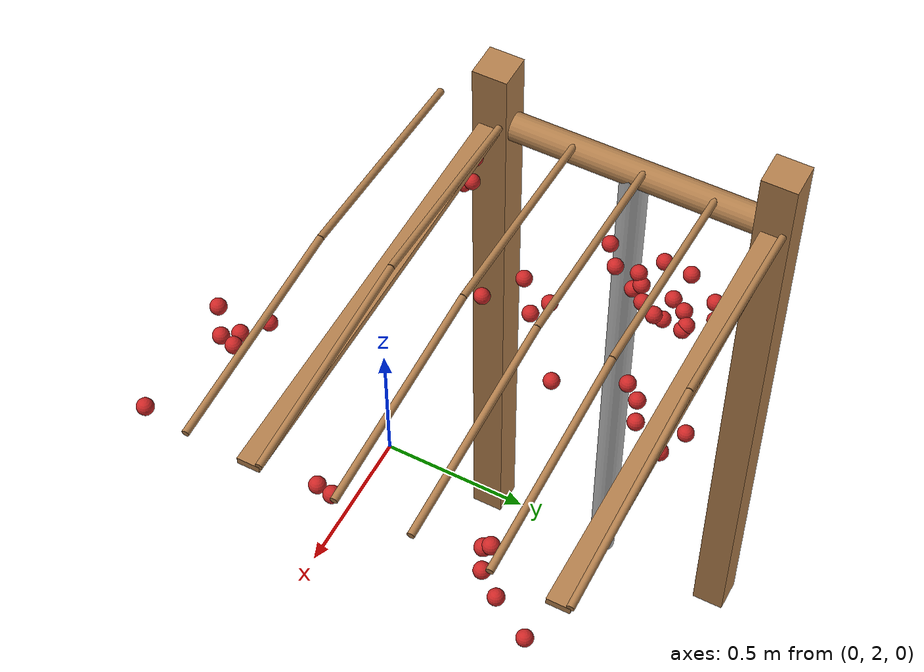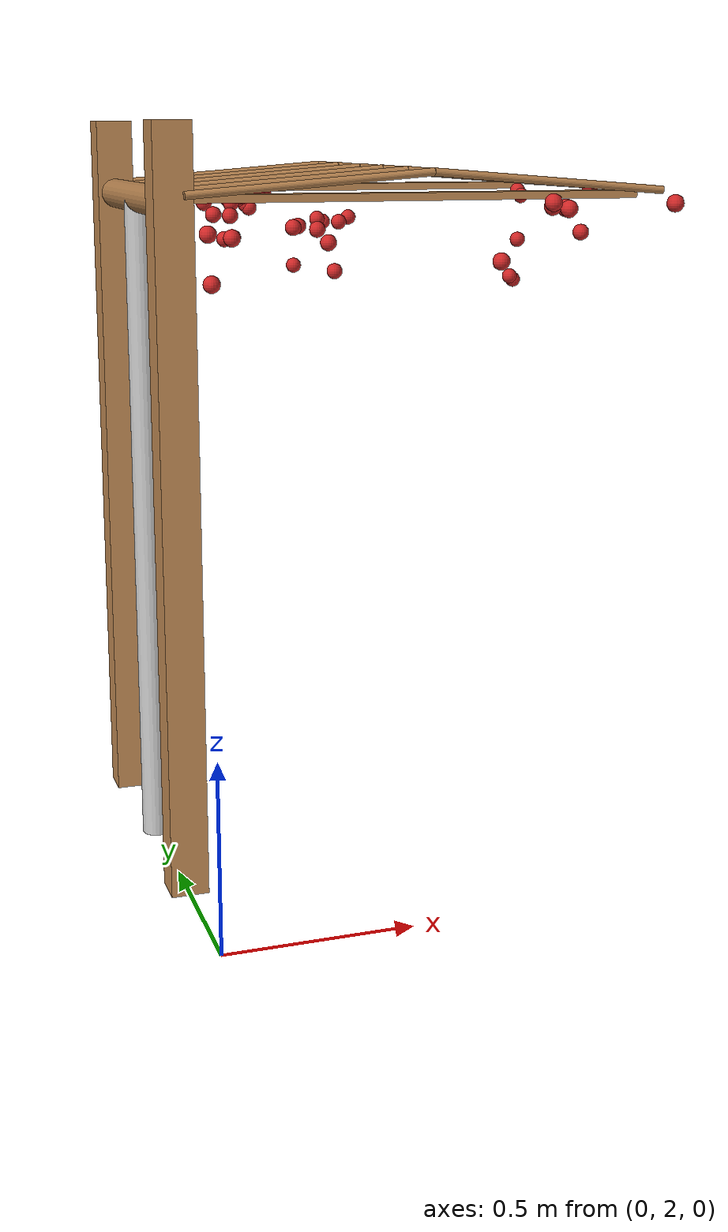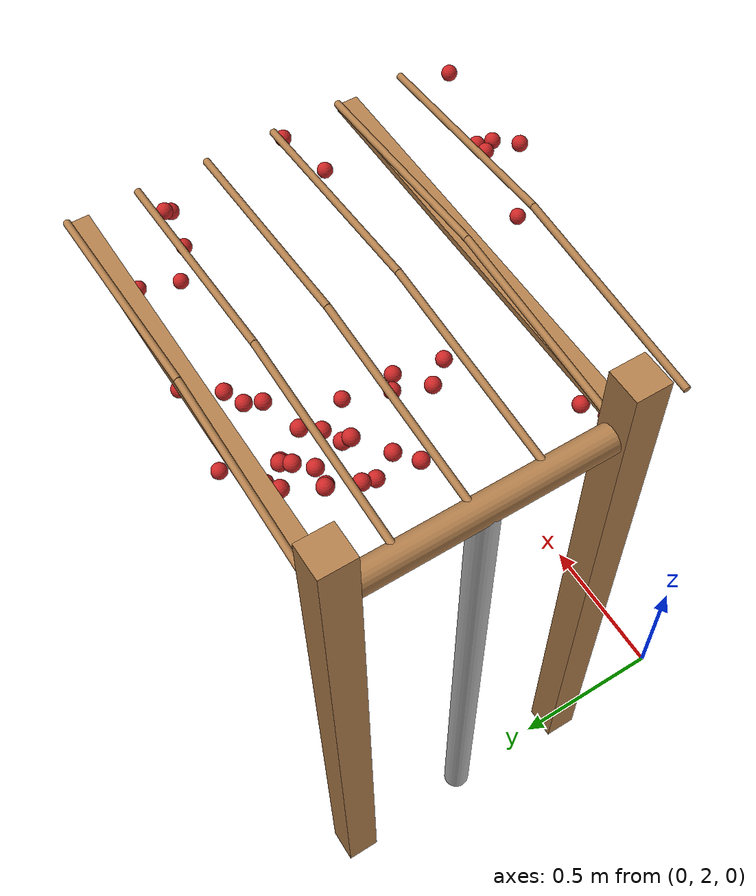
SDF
<sdf version="1.4">
 <model name="pergola">
  <include><name>post_3</name><pose>0.0 2.4000000000000004 0 0 0 0</pose><uri>model://post</uri></include>
  <include><name>post_4</name><pose>0.0 3.2 0 0 0 0</pose><uri>model://post</uri></include>
  <link name="beam_3">
   <pose>0.625 2.4000000000000004 1.81 0 0 0</pose>
   <collision name="collision"><geometry><box><size>1.25 0.06 0.02</size></box></geometry></collision>
   <visual name="visual">
    <geometry><box><size>1.25 0.06 0.02</size></box></geometry>
    <material><script><name>Gazebo/Wood</name></script></material>
   </visual>
   <inertial>
    <mass>5</mass>
    <inertia>
     <ixx>0.0016666666666666668</ixx>
     <ixy>0.0</ixy>
     <ixz>0.0</ixz>
     <iyy>0.6525416666666667</iyy>
     <iyz>0.0</iyz>
     <izz>0.6512083333333333</izz>
    </inertia>
   </inertial>
  </link>
  <link name="beam_4">
   <pose>0.625 3.2 1.81 0 0 0</pose>
   <collision name="collision"><geometry><box><size>1.25 0.06 0.02</size></box></geometry></collision>
   <visual name="visual">
    <geometry><box><size>1.25 0.06 0.02</size></box></geometry>
    <material><script><name>Gazebo/Wood</name></script></material>
   </visual>
   <inertial>
    <mass>5</mass>
    <inertia>
     <ixx>0.0016666666666666668</ixx>
     <ixy>0.0</ixy>
     <ixz>0.0</ixz>
     <iyy>0.6525416666666667</iyy>
     <iyz>0.0</iyz>
     <izz>0.6512083333333333</izz>
    </inertia>
   </inertial>
  </link>
  <include><name>tree_3</name><pose>0.0 2.8000000000000003 0 0 0 0</pose><uri>model://tree_trunk</uri></include>
  <link name="baseBranch_3">
   <pose>0.0 2.8000000000000003 1.8 1.5707963267948966 0 0</pose>
   <collision name="collision">
    <geometry><cylinder><radius>0.04</radius><length>0.74</length></cylinder></geometry>
   </collision>
   <visual name="visual">
    <geometry><cylinder><radius>0.04</radius><length>0.74</length></cylinder></geometry>
    <material><script><name>Gazebo/WoodFloor</name></script></material>
   </visual>
   <inertial>
    <mass>10</mass>
    <inertia>
     <ixx>0.4603333333333333</ixx>
     <ixy>0.0</ixy>
     <ixz>0.0</ixz>
     <iyy>0.4603333333333333</iyy>
     <iyz>0.0</iyz>
     <izz>0.008</izz>
    </inertia>
   </inertial>
  </link>
  <link name="vine_22">
   <pose>0.3125 2.23 1.85 0 1.4909663410826592 0</pose>
   <collision name="collision">
    <geometry><cylinder><radius>0.01</radius><length>0.6269968101992226</length></cylinder></geometry>
   </collision>
   <visual name="visual">
    <geometry><cylinder><radius>0.01</radius><length>0.6269968101992226</length></cylinder></geometry>
    <material><script><name>Gazebo/WoodFloor</name></script></material>
   </visual>
   <inertial>
    <mass>5</mass>
    <inertia>
     <ixx>0.1639270833333333</ixx>
     <ixy>0.0</ixy>
     <ixz>0.0</ixz>
     <iyy>0.1639270833333333</iyy>
     <iyz>0.0</iyz>
     <izz>0.00025</izz>
    </inertia>
   </inertial>
  </link>
  <link name="vine_23">
   <pose>0.9375 2.23 1.85 0 -1.4909663410826592 0</pose>
   <collision name="collision">
    <geometry><cylinder><radius>0.01</radius><length>0.6269968101992226</length></cylinder></geometry>
   </collision>
   <visual name="visual">
    <geometry><cylinder><radius>0.01</radius><length>0.6269968101992226</length></cylinder></geometry>
    <material><script><name>Gazebo/WoodFloor</name></script></material>
   </visual>
   <inertial>
    <mass>5</mass>
    <inertia>
     <ixx>0.1639270833333333</ixx>
     <ixy>0.0</ixy>
     <ixz>0.0</ixz>
     <iyy>0.1639270833333333</iyy>
     <iyz>0.0</iyz>
     <izz>0.00025</izz>
    </inertia>
   </inertial>
  </link>
  <link name="vine_24">
   <pose>0.3125 2.43 1.85 0 1.4909663410826592 0</pose>
   <collision name="collision">
    <geometry><cylinder><radius>0.01</radius><length>0.6269968101992226</length></cylinder></geometry>
   </collision>
   <visual name="visual">
    <geometry><cylinder><radius>0.01</radius><length>0.6269968101992226</length></cylinder></geometry>
    <material><script><name>Gazebo/WoodFloor</name></script></material>
   </visual>
   <inertial>
    <mass>5</mass>
    <inertia>
     <ixx>0.1639270833333333</ixx>
     <ixy>0.0</ixy>
     <ixz>0.0</ixz>
     <iyy>0.1639270833333333</iyy>
     <iyz>0.0</iyz>
     <izz>0.00025</izz>
    </inertia>
   </inertial>
  </link>
  <link name="vine_25">
   <pose>0.9375 2.43 1.85 0 -1.4909663410826592 0</pose>
   <collision name="collision">
    <geometry><cylinder><radius>0.01</radius><length>0.6269968101992226</length></cylinder></geometry>
   </collision>
   <visual name="visual">
    <geometry><cylinder><radius>0.01</radius><length>0.6269968101992226</length></cylinder></geometry>
    <material><script><name>Gazebo/WoodFloor</name></script></material>
   </visual>
   <inertial>
    <mass>5</mass>
    <inertia>
     <ixx>0.1639270833333333</ixx>
     <ixy>0.0</ixy>
     <ixz>0.0</ixz>
     <iyy>0.1639270833333333</iyy>
     <iyz>0.0</iyz>
     <izz>0.00025</izz>
    </inertia>
   </inertial>
  </link>
  <link name="vine_26">
   <pose>0.3125 2.63 1.85 0 1.4909663410826592 0</pose>
   <collision name="collision">
    <geometry><cylinder><radius>0.01</radius><length>0.6269968101992226</length></cylinder></geometry>
   </collision>
   <visual name="visual">
    <geometry><cylinder><radius>0.01</radius><length>0.6269968101992226</length></cylinder></geometry>
    <material><script><name>Gazebo/WoodFloor</name></script></material>
   </visual>
   <inertial>
    <mass>5</mass>
    <inertia>
     <ixx>0.1639270833333333</ixx>
     <ixy>0.0</ixy>
     <ixz>0.0</ixz>
     <iyy>0.1639270833333333</iyy>
     <iyz>0.0</iyz>
     <izz>0.00025</izz>
    </inertia>
   </inertial>
  </link>
  <link name="vine_27">
   <pose>0.9375 2.63 1.85 0 -1.4909663410826592 0</pose>
   <collision name="collision">
    <geometry><cylinder><radius>0.01</radius><length>0.6269968101992226</length></cylinder></geometry>
   </collision>
   <visual name="visual">
    <geometry><cylinder><radius>0.01</radius><length>0.6269968101992226</length></cylinder></geometry>
    <material><script><name>Gazebo/WoodFloor</name></script></material>
   </visual>
   <inertial>
    <mass>5</mass>
    <inertia>
     <ixx>0.1639270833333333</ixx>
     <ixy>0.0</ixy>
     <ixz>0.0</ixz>
     <iyy>0.1639270833333333</iyy>
     <iyz>0.0</iyz>
     <izz>0.00025</izz>
    </inertia>
   </inertial>
  </link>
  <link name="vine_28">
   <pose>0.3125 2.83 1.85 0 1.4909663410826592 0</pose>
   <collision name="collision">
    <geometry><cylinder><radius>0.01</radius><length>0.6269968101992226</length></cylinder></geometry>
   </collision>
   <visual name="visual">
    <geometry><cylinder><radius>0.01</radius><length>0.6269968101992226</length></cylinder></geometry>
    <material><script><name>Gazebo/WoodFloor</name></script></material>
   </visual>
   <inertial>
    <mass>5</mass>
    <inertia>
     <ixx>0.1639270833333333</ixx>
     <ixy>0.0</ixy>
     <ixz>0.0</ixz>
     <iyy>0.1639270833333333</iyy>
     <iyz>0.0</iyz>
     <izz>0.00025</izz>
    </inertia>
   </inertial>
  </link>
  <link name="vine_29">
   <pose>0.9375 2.83 1.85 0 -1.4909663410826592 0</pose>
   <collision name="collision">
    <geometry><cylinder><radius>0.01</radius><length>0.6269968101992226</length></cylinder></geometry>
   </collision>
   <visual name="visual">
    <geometry><cylinder><radius>0.01</radius><length>0.6269968101992226</length></cylinder></geometry>
    <material><script><name>Gazebo/WoodFloor</name></script></material>
   </visual>
   <inertial>
    <mass>5</mass>
    <inertia>
     <ixx>0.1639270833333333</ixx>
     <ixy>0.0</ixy>
     <ixz>0.0</ixz>
     <iyy>0.1639270833333333</iyy>
     <iyz>0.0</iyz>
     <izz>0.00025</izz>
    </inertia>
   </inertial>
  </link>
  <link name="vine_30">
   <pose>0.3125 3.03 1.85 0 1.4909663410826592 0</pose>
   <collision name="collision">
    <geometry><cylinder><radius>0.01</radius><length>0.6269968101992226</length></cylinder></geometry>
   </collision>
   <visual name="visual">
    <geometry><cylinder><radius>0.01</radius><length>0.6269968101992226</length></cylinder></geometry>
    <material><script><name>Gazebo/WoodFloor</name></script></material>
   </visual>
   <inertial>
    <mass>5</mass>
    <inertia>
     <ixx>0.1639270833333333</ixx>
     <ixy>0.0</ixy>
     <ixz>0.0</ixz>
     <iyy>0.1639270833333333</iyy>
     <iyz>0.0</iyz>
     <izz>0.00025</izz>
    </inertia>
   </inertial>
  </link>
  <link name="vine_31">
   <pose>0.9375 3.03 1.85 0 -1.4909663410826592 0</pose>
   <collision name="collision">
    <geometry><cylinder><radius>0.01</radius><length>0.6269968101992226</length></cylinder></geometry>
   </collision>
   <visual name="visual">
    <geometry><cylinder><radius>0.01</radius><length>0.6269968101992226</length></cylinder></geometry>
    <material><script><name>Gazebo/WoodFloor</name></script></material>
   </visual>
   <inertial>
    <mass>5</mass>
    <inertia>
     <ixx>0.1639270833333333</ixx>
     <ixy>0.0</ixy>
     <ixz>0.0</ixz>
     <iyy>0.1639270833333333</iyy>
     <iyz>0.0</iyz>
     <izz>0.00025</izz>
    </inertia>
   </inertial>
  </link>
  <link name="vine_32">
   <pose>0.3125 3.23 1.85 0 1.4909663410826592 0</pose>
   <collision name="collision">
    <geometry><cylinder><radius>0.01</radius><length>0.6269968101992226</length></cylinder></geometry>
   </collision>
   <visual name="visual">
    <geometry><cylinder><radius>0.01</radius><length>0.6269968101992226</length></cylinder></geometry>
    <material><script><name>Gazebo/WoodFloor</name></script></material>
   </visual>
   <inertial>
    <mass>5</mass>
    <inertia>
     <ixx>0.1639270833333333</ixx>
     <ixy>0.0</ixy>
     <ixz>0.0</ixz>
     <iyy>0.1639270833333333</iyy>
     <iyz>0.0</iyz>
     <izz>0.00025</izz>
    </inertia>
   </inertial>
  </link>
  <link name="vine_33">
   <pose>0.9375 3.23 1.85 0 -1.4909663410826592 0</pose>
   <collision name="collision">
    <geometry><cylinder><radius>0.01</radius><length>0.6269968101992226</length></cylinder></geometry>
   </collision>
   <visual name="visual">
    <geometry><cylinder><radius>0.01</radius><length>0.6269968101992226</length></cylinder></geometry>
    <material><script><name>Gazebo/WoodFloor</name></script></material>
   </visual>
   <inertial>
    <mass>5</mass>
    <inertia>
     <ixx>0.1639270833333333</ixx>
     <ixy>0.0</ixy>
     <ixz>0.0</ixz>
     <iyy>0.1639270833333333</iyy>
     <iyz>0.0</iyz>
     <izz>0.00025</izz>
    </inertia>
   </inertial>
  </link>
  <link name="fruit_3">
   <pose>1.1751466543872304 2.9949975951901653 1.800253805234695 0 0 0</pose>
   <collision name="fruit_collision_3"><geometry><sphere><radius>0.022</radius></sphere></geometry></collision>
   <visual name="visual">
    <geometry><sphere><radius>0.022</radius></sphere></geometry>
    <material><script><name>Gazebo/Red</name></script></material>
   </visual>
   <inertial>
    <mass>0.05</mass>
    <inertia>
     <ixx>9.679999999999999e-06</ixx>
     <ixy>0.0</ixy>
     <ixz>0.0</ixz>
     <iyy>9.679999999999999e-06</iyy>
     <iyz>0.0</iyz>
     <izz>9.679999999999999e-06</izz>
    </inertia>
   </inertial>
   <sensor name="fruit_contact_3" type="contact">
    <plugin name="contact_plugin_3" filename="libcontact_plugin.so"/>
    <contact><collision>fruit_collision_3</collision><topic>fruit_contact_topic_3</topic></contact>
   </sensor>
  </link>
  <link name="fruit_6">
   <pose>1.1651200380507636 2.966934088027173 1.6576129850474137 0 0 0</pose>
   <collision name="fruit_collision_6"><geometry><sphere><radius>0.022</radius></sphere></geometry></collision>
   <visual name="visual">
    <geometry><sphere><radius>0.022</radius></sphere></geometry>
    <material><script><name>Gazebo/Red</name></script></material>
   </visual>
   <inertial>
    <mass>0.05</mass>
    <inertia>
     <ixx>9.679999999999999e-06</ixx>
     <ixy>0.0</ixy>
     <ixz>0.0</ixz>
     <iyy>9.679999999999999e-06</iyy>
     <iyz>0.0</iyz>
     <izz>9.679999999999999e-06</izz>
    </inertia>
   </inertial>
   <sensor name="fruit_contact_6" type="contact">
    <plugin name="contact_plugin_6" filename="libcontact_plugin.so"/>
    <contact><collision>fruit_collision_6</collision><topic>fruit_contact_topic_6</topic></contact>
   </sensor>
  </link>
  <link name="fruit_19">
   <pose>0.31298484404060317 2.9571537522348703 1.8155178682897644 0 0 0</pose>
   <collision name="fruit_collision_19"><geometry><sphere><radius>0.022</radius></sphere></geometry></collision>
   <visual name="visual">
    <geometry><sphere><radius>0.022</radius></sphere></geometry>
    <material><script><name>Gazebo/Red</name></script></material>
   </visual>
   <inertial>
    <mass>0.05</mass>
    <inertia>
     <ixx>9.679999999999999e-06</ixx>
     <ixy>0.0</ixy>
     <ixz>0.0</ixz>
     <iyy>9.679999999999999e-06</iyy>
     <iyz>0.0</iyz>
     <izz>9.679999999999999e-06</izz>
    </inertia>
   </inertial>
   <sensor name="fruit_contact_19" type="contact">
    <plugin name="contact_plugin_19" filename="libcontact_plugin.so"/>
    <contact><collision>fruit_collision_19</collision><topic>fruit_contact_topic_19</topic></contact>
   </sensor>
  </link>
  <link name="fruit_44">
   <pose>0.8802203118222492 2.085605411709271 1.8031803338756964 0 0 0</pose>
   <collision name="fruit_collision_44"><geometry><sphere><radius>0.022</radius></sphere></geometry></collision>
   <visual name="visual">
    <geometry><sphere><radius>0.022</radius></sphere></geometry>
    <material><script><name>Gazebo/Red</name></script></material>
   </visual>
   <inertial>
    <mass>0.05</mass>
    <inertia>
     <ixx>9.679999999999999e-06</ixx>
     <ixy>0.0</ixy>
     <ixz>0.0</ixz>
     <iyy>9.679999999999999e-06</iyy>
     <iyz>0.0</iyz>
     <izz>9.679999999999999e-06</izz>
    </inertia>
   </inertial>
   <sensor name="fruit_contact_44" type="contact">
    <plugin name="contact_plugin_44" filename="libcontact_plugin.so"/>
    <contact><collision>fruit_collision_44</collision><topic>fruit_contact_topic_44</topic></contact>
   </sensor>
  </link>
  <link name="fruit_52">
   <pose>0.20882086005662437 2.8324684638857125 1.750229507298991 0 0 0</pose>
   <collision name="fruit_collision_52"><geometry><sphere><radius>0.022</radius></sphere></geometry></collision>
   <visual name="visual">
    <geometry><sphere><radius>0.022</radius></sphere></geometry>
    <material><script><name>Gazebo/Red</name></script></material>
   </visual>
   <inertial>
    <mass>0.05</mass>
    <inertia>
     <ixx>9.679999999999999e-06</ixx>
     <ixy>0.0</ixy>
     <ixz>0.0</ixz>
     <iyy>9.679999999999999e-06</iyy>
     <iyz>0.0</iyz>
     <izz>9.679999999999999e-06</izz>
    </inertia>
   </inertial>
   <sensor name="fruit_contact_52" type="contact">
    <plugin name="contact_plugin_52" filename="libcontact_plugin.so"/>
    <contact><collision>fruit_collision_52</collision><topic>fruit_contact_topic_52</topic></contact>
   </sensor>
  </link>
  <link name="fruit_85">
   <pose>0.7120352980910454 3.205870636272803 1.719150542318895 0 0 0</pose>
   <collision name="fruit_collision_85"><geometry><sphere><radius>0.022</radius></sphere></geometry></collision>
   <visual name="visual">
    <geometry><sphere><radius>0.022</radius></sphere></geometry>
    <material><script><name>Gazebo/Red</name></script></material>
   </visual>
   <inertial>
    <mass>0.05</mass>
    <inertia>
     <ixx>9.679999999999999e-06</ixx>
     <ixy>0.0</ixy>
     <ixz>0.0</ixz>
     <iyy>9.679999999999999e-06</iyy>
     <iyz>0.0</iyz>
     <izz>9.679999999999999e-06</izz>
    </inertia>
   </inertial>
   <sensor name="fruit_contact_85" type="contact">
    <plugin name="contact_plugin_85" filename="libcontact_plugin.so"/>
    <contact><collision>fruit_collision_85</collision><topic>fruit_contact_topic_85</topic></contact>
   </sensor>
  </link>
  <link name="fruit_91">
   <pose>0.4648522502473934 2.598004672735003 1.6837706776739327 0 0 0</pose>
   <collision name="fruit_collision_91"><geometry><sphere><radius>0.022</radius></sphere></geometry></collision>
   <visual name="visual">
    <geometry><sphere><radius>0.022</radius></sphere></geometry>
    <material><script><name>Gazebo/Red</name></script></material>
   </visual>
   <inertial>
    <mass>0.05</mass>
    <inertia>
     <ixx>9.679999999999999e-06</ixx>
     <ixy>0.0</ixy>
     <ixz>0.0</ixz>
     <iyy>9.679999999999999e-06</iyy>
     <iyz>0.0</iyz>
     <izz>9.679999999999999e-06</izz>
    </inertia>
   </inertial>
   <sensor name="fruit_contact_91" type="contact">
    <plugin name="contact_plugin_91" filename="libcontact_plugin.so"/>
    <contact><collision>fruit_collision_91</collision><topic>fruit_contact_topic_91</topic></contact>
   </sensor>
  </link>
  <link name="fruit_116">
   <pose>0.327092231453127 2.9725204785739 1.7936043221359512 0 0 0</pose>
   <collision name="fruit_collision_116"><geometry><sphere><radius>0.022</radius></sphere></geometry></collision>
   <visual name="visual">
    <geometry><sphere><radius>0.022</radius></sphere></geometry>
    <material><script><name>Gazebo/Red</name></script></material>
   </visual>
   <inertial>
    <mass>0.05</mass>
    <inertia>
     <ixx>9.679999999999999e-06</ixx>
     <ixy>0.0</ixy>
     <ixz>0.0</ixz>
     <iyy>9.679999999999999e-06</iyy>
     <iyz>0.0</iyz>
     <izz>9.679999999999999e-06</izz>
    </inertia>
   </inertial>
   <sensor name="fruit_contact_116" type="contact">
    <plugin name="contact_plugin_116" filename="libcontact_plugin.so"/>
    <contact><collision>fruit_collision_116</collision><topic>fruit_contact_topic_116</topic></contact>
   </sensor>
  </link>
  <link name="fruit_128">
   <pose>1.2287368434099681 2.6119905400710026 1.8107619497454819 0 0 0</pose>
   <collision name="fruit_collision_128"><geometry><sphere><radius>0.022</radius></sphere></geometry></collision>
   <visual name="visual">
    <geometry><sphere><radius>0.022</radius></sphere></geometry>
    <material><script><name>Gazebo/Red</name></script></material>
   </visual>
   <inertial>
    <mass>0.05</mass>
    <inertia>
     <ixx>9.679999999999999e-06</ixx>
     <ixy>0.0</ixy>
     <ixz>0.0</ixz>
     <iyy>9.679999999999999e-06</iyy>
     <iyz>0.0</iyz>
     <izz>9.679999999999999e-06</izz>
    </inertia>
   </inertial>
   <sensor name="fruit_contact_128" type="contact">
    <plugin name="contact_plugin_128" filename="libcontact_plugin.so"/>
    <contact><collision>fruit_collision_128</collision><topic>fruit_contact_topic_128</topic></contact>
   </sensor>
  </link>
  <link name="fruit_137">
   <pose>0.5686201540140622 3.053720023400031 1.723264042564922 0 0 0</pose>
   <collision name="fruit_collision_137"><geometry><sphere><radius>0.022</radius></sphere></geometry></collision>
   <visual name="visual">
    <geometry><sphere><radius>0.022</radius></sphere></geometry>
    <material><script><name>Gazebo/Red</name></script></material>
   </visual>
   <inertial>
    <mass>0.05</mass>
    <inertia>
     <ixx>9.679999999999999e-06</ixx>
     <ixy>0.0</ixy>
     <ixz>0.0</ixz>
     <iyy>9.679999999999999e-06</iyy>
     <iyz>0.0</iyz>
     <izz>9.679999999999999e-06</izz>
    </inertia>
   </inertial>
   <sensor name="fruit_contact_137" type="contact">
    <plugin name="contact_plugin_137" filename="libcontact_plugin.so"/>
    <contact><collision>fruit_collision_137</collision><topic>fruit_contact_topic_137</topic></contact>
   </sensor>
  </link>
  <link name="fruit_142">
   <pose>0.5400665772938302 3.2080827232109375 1.5784364177430112 0 0 0</pose>
   <collision name="fruit_collision_142"><geometry><sphere><radius>0.022</radius></sphere></geometry></collision>
   <visual name="visual">
    <geometry><sphere><radius>0.022</radius></sphere></geometry>
    <material><script><name>Gazebo/Red</name></script></material>
   </visual>
   <inertial>
    <mass>0.05</mass>
    <inertia>
     <ixx>9.679999999999999e-06</ixx>
     <ixy>0.0</ixy>
     <ixz>0.0</ixz>
     <iyy>9.679999999999999e-06</iyy>
     <iyz>0.0</iyz>
     <izz>9.679999999999999e-06</izz>
    </inertia>
   </inertial>
   <sensor name="fruit_contact_142" type="contact">
    <plugin name="contact_plugin_142" filename="libcontact_plugin.so"/>
    <contact><collision>fruit_collision_142</collision><topic>fruit_contact_topic_142</topic></contact>
   </sensor>
  </link>
  <link name="fruit_146">
   <pose>1.1787445877267542 2.9769961628320902 1.7857423185384282 0 0 0</pose>
   <collision name="fruit_collision_146"><geometry><sphere><radius>0.022</radius></sphere></geometry></collision>
   <visual name="visual">
    <geometry><sphere><radius>0.022</radius></sphere></geometry>
    <material><script><name>Gazebo/Red</name></script></material>
   </visual>
   <inertial>
    <mass>0.05</mass>
    <inertia>
     <ixx>9.679999999999999e-06</ixx>
     <ixy>0.0</ixy>
     <ixz>0.0</ixz>
     <iyy>9.679999999999999e-06</iyy>
     <iyz>0.0</iyz>
     <izz>9.679999999999999e-06</izz>
    </inertia>
   </inertial>
   <sensor name="fruit_contact_146" type="contact">
    <plugin name="contact_plugin_146" filename="libcontact_plugin.so"/>
    <contact><collision>fruit_collision_146</collision><topic>fruit_contact_topic_146</topic></contact>
   </sensor>
  </link>
  <link name="fruit_152">
   <pose>0.3125845526361285 3.0549121529885306 1.7693654565137389 0 0 0</pose>
   <collision name="fruit_collision_152"><geometry><sphere><radius>0.022</radius></sphere></geometry></collision>
   <visual name="visual">
    <geometry><sphere><radius>0.022</radius></sphere></geometry>
    <material><script><name>Gazebo/Red</name></script></material>
   </visual>
   <inertial>
    <mass>0.05</mass>
    <inertia>
     <ixx>9.679999999999999e-06</ixx>
     <ixy>0.0</ixy>
     <ixz>0.0</ixz>
     <iyy>9.679999999999999e-06</iyy>
     <iyz>0.0</iyz>
     <izz>9.679999999999999e-06</izz>
    </inertia>
   </inertial>
   <sensor name="fruit_contact_152" type="contact">
    <plugin name="contact_plugin_152" filename="libcontact_plugin.so"/>
    <contact><collision>fruit_collision_152</collision><topic>fruit_contact_topic_152</topic></contact>
   </sensor>
  </link>
  <link name="fruit_165">
   <pose>1.1638666904528996 2.527324899669627 1.7028386953058672 0 0 0</pose>
   <collision name="fruit_collision_165"><geometry><sphere><radius>0.022</radius></sphere></geometry></collision>
   <visual name="visual">
    <geometry><sphere><radius>0.022</radius></sphere></geometry>
    <material><script><name>Gazebo/Red</name></script></material>
   </visual>
   <inertial>
    <mass>0.05</mass>
    <inertia>
     <ixx>9.679999999999999e-06</ixx>
     <ixy>0.0</ixy>
     <ixz>0.0</ixz>
     <iyy>9.679999999999999e-06</iyy>
     <iyz>0.0</iyz>
     <izz>9.679999999999999e-06</izz>
    </inertia>
   </inertial>
   <sensor name="fruit_contact_165" type="contact">
    <plugin name="contact_plugin_165" filename="libcontact_plugin.so"/>
    <contact><collision>fruit_collision_165</collision><topic>fruit_contact_topic_165</topic></contact>
   </sensor>
  </link>
  <link name="fruit_216">
   <pose>0.39127182275537886 2.679804198882047 1.7208121215244225 0 0 0</pose>
   <collision name="fruit_collision_216"><geometry><sphere><radius>0.022</radius></sphere></geometry></collision>
   <visual name="visual">
    <geometry><sphere><radius>0.022</radius></sphere></geometry>
    <material><script><name>Gazebo/Red</name></script></material>
   </visual>
   <inertial>
    <mass>0.05</mass>
    <inertia>
     <ixx>9.679999999999999e-06</ixx>
     <ixy>0.0</ixy>
     <ixz>0.0</ixz>
     <iyy>9.679999999999999e-06</iyy>
     <iyz>0.0</iyz>
     <izz>9.679999999999999e-06</izz>
    </inertia>
   </inertial>
   <sensor name="fruit_contact_216" type="contact">
    <plugin name="contact_plugin_216" filename="libcontact_plugin.so"/>
    <contact><collision>fruit_collision_216</collision><topic>fruit_contact_topic_216</topic></contact>
   </sensor>
  </link>
  <link name="fruit_232">
   <pose>0.08923381759385678 2.3793525284950814 1.724220303603032 0 0 0</pose>
   <collision name="fruit_collision_232"><geometry><sphere><radius>0.022</radius></sphere></geometry></collision>
   <visual name="visual">
    <geometry><sphere><radius>0.022</radius></sphere></geometry>
    <material><script><name>Gazebo/Red</name></script></material>
   </visual>
   <inertial>
    <mass>0.05</mass>
    <inertia>
     <ixx>9.679999999999999e-06</ixx>
     <ixy>0.0</ixy>
     <ixz>0.0</ixz>
     <iyy>9.679999999999999e-06</iyy>
     <iyz>0.0</iyz>
     <izz>9.679999999999999e-06</izz>
    </inertia>
   </inertial>
   <sensor name="fruit_contact_232" type="contact">
    <plugin name="contact_plugin_232" filename="libcontact_plugin.so"/>
    <contact><collision>fruit_collision_232</collision><topic>fruit_contact_topic_232</topic></contact>
   </sensor>
  </link>
  <link name="fruit_246">
   <pose>0.7743619818351041 2.153638794705435 1.6590313549145022 0 0 0</pose>
   <collision name="fruit_collision_246"><geometry><sphere><radius>0.022</radius></sphere></geometry></collision>
   <visual name="visual">
    <geometry><sphere><radius>0.022</radius></sphere></geometry>
    <material><script><name>Gazebo/Red</name></script></material>
   </visual>
   <inertial>
    <mass>0.05</mass>
    <inertia>
     <ixx>9.679999999999999e-06</ixx>
     <ixy>0.0</ixy>
     <ixz>0.0</ixz>
     <iyy>9.679999999999999e-06</iyy>
     <iyz>0.0</iyz>
     <izz>9.679999999999999e-06</izz>
    </inertia>
   </inertial>
   <sensor name="fruit_contact_246" type="contact">
    <plugin name="contact_plugin_246" filename="libcontact_plugin.so"/>
    <contact><collision>fruit_collision_246</collision><topic>fruit_contact_topic_246</topic></contact>
   </sensor>
  </link>
  <link name="fruit_247">
   <pose>0.26073811420841647 2.924556310051717 1.678012419502597 0 0 0</pose>
   <collision name="fruit_collision_247"><geometry><sphere><radius>0.022</radius></sphere></geometry></collision>
   <visual name="visual">
    <geometry><sphere><radius>0.022</radius></sphere></geometry>
    <material><script><name>Gazebo/Red</name></script></material>
   </visual>
   <inertial>
    <mass>0.05</mass>
    <inertia>
     <ixx>9.679999999999999e-06</ixx>
     <ixy>0.0</ixy>
     <ixz>0.0</ixz>
     <iyy>9.679999999999999e-06</iyy>
     <iyz>0.0</iyz>
     <izz>9.679999999999999e-06</izz>
    </inertia>
   </inertial>
   <sensor name="fruit_contact_247" type="contact">
    <plugin name="contact_plugin_247" filename="libcontact_plugin.so"/>
    <contact><collision>fruit_collision_247</collision><topic>fruit_contact_topic_247</topic></contact>
   </sensor>
  </link>
  <link name="fruit_268">
   <pose>0.2186401630795256 2.987403918217213 1.7756937271452369 0 0 0</pose>
   <collision name="fruit_collision_268"><geometry><sphere><radius>0.022</radius></sphere></geometry></collision>
   <visual name="visual">
    <geometry><sphere><radius>0.022</radius></sphere></geometry>
    <material><script><name>Gazebo/Red</name></script></material>
   </visual>
   <inertial>
    <mass>0.05</mass>
    <inertia>
     <ixx>9.679999999999999e-06</ixx>
     <ixy>0.0</ixy>
     <ixz>0.0</ixz>
     <iyy>9.679999999999999e-06</iyy>
     <iyz>0.0</iyz>
     <izz>9.679999999999999e-06</izz>
    </inertia>
   </inertial>
   <sensor name="fruit_contact_268" type="contact">
    <plugin name="contact_plugin_268" filename="libcontact_plugin.so"/>
    <contact><collision>fruit_collision_268</collision><topic>fruit_contact_topic_268</topic></contact>
   </sensor>
  </link>
  <link name="fruit_295">
   <pose>1.155616577154353 2.9994707101637683 1.5465704106817721 0 0 0</pose>
   <collision name="fruit_collision_295"><geometry><sphere><radius>0.022</radius></sphere></geometry></collision>
   <visual name="visual">
    <geometry><sphere><radius>0.022</radius></sphere></geometry>
    <material><script><name>Gazebo/Red</name></script></material>
   </visual>
   <inertial>
    <mass>0.05</mass>
    <inertia>
     <ixx>9.679999999999999e-06</ixx>
     <ixy>0.0</ixy>
     <ixz>0.0</ixz>
     <iyy>9.679999999999999e-06</iyy>
     <iyz>0.0</iyz>
     <izz>9.679999999999999e-06</izz>
    </inertia>
   </inertial>
   <sensor name="fruit_contact_295" type="contact">
    <plugin name="contact_plugin_295" filename="libcontact_plugin.so"/>
    <contact><collision>fruit_collision_295</collision><topic>fruit_contact_topic_295</topic></contact>
   </sensor>
  </link>
  <link name="fruit_307">
   <pose>0.08856092119506699 2.3450906073378643 1.6046763770400096 0 0 0</pose>
   <collision name="fruit_collision_307"><geometry><sphere><radius>0.022</radius></sphere></geometry></collision>
   <visual name="visual">
    <geometry><sphere><radius>0.022</radius></sphere></geometry>
    <material><script><name>Gazebo/Red</name></script></material>
   </visual>
   <inertial>
    <mass>0.05</mass>
    <inertia>
     <ixx>9.679999999999999e-06</ixx>
     <ixy>0.0</ixy>
     <ixz>0.0</ixz>
     <iyy>9.679999999999999e-06</iyy>
     <iyz>0.0</iyz>
     <izz>9.679999999999999e-06</izz>
    </inertia>
   </inertial>
   <sensor name="fruit_contact_307" type="contact">
    <plugin name="contact_plugin_307" filename="libcontact_plugin.so"/>
    <contact><collision>fruit_collision_307</collision><topic>fruit_contact_topic_307</topic></contact>
   </sensor>
  </link>
  <link name="fruit_321">
   <pose>0.5572295907584079 2.844546896101002 1.5877848757861972 0 0 0</pose>
   <collision name="fruit_collision_321"><geometry><sphere><radius>0.022</radius></sphere></geometry></collision>
   <visual name="visual">
    <geometry><sphere><radius>0.022</radius></sphere></geometry>
    <material><script><name>Gazebo/Red</name></script></material>
   </visual>
   <inertial>
    <mass>0.05</mass>
    <inertia>
     <ixx>9.679999999999999e-06</ixx>
     <ixy>0.0</ixy>
     <ixz>0.0</ixz>
     <iyy>9.679999999999999e-06</iyy>
     <iyz>0.0</iyz>
     <izz>9.679999999999999e-06</izz>
    </inertia>
   </inertial>
   <sensor name="fruit_contact_321" type="contact">
    <plugin name="contact_plugin_321" filename="libcontact_plugin.so"/>
    <contact><collision>fruit_collision_321</collision><topic>fruit_contact_topic_321</topic></contact>
   </sensor>
  </link>
  <link name="fruit_328">
   <pose>0.2412661480589675 3.069556048295646 1.7963882163675213 0 0 0</pose>
   <collision name="fruit_collision_328"><geometry><sphere><radius>0.022</radius></sphere></geometry></collision>
   <visual name="visual">
    <geometry><sphere><radius>0.022</radius></sphere></geometry>
    <material><script><name>Gazebo/Red</name></script></material>
   </visual>
   <inertial>
    <mass>0.05</mass>
    <inertia>
     <ixx>9.679999999999999e-06</ixx>
     <ixy>0.0</ixy>
     <ixz>0.0</ixz>
     <iyy>9.679999999999999e-06</iyy>
     <iyz>0.0</iyz>
     <izz>9.679999999999999e-06</izz>
    </inertia>
   </inertial>
   <sensor name="fruit_contact_328" type="contact">
    <plugin name="contact_plugin_328" filename="libcontact_plugin.so"/>
    <contact><collision>fruit_collision_328</collision><topic>fruit_contact_topic_328</topic></contact>
   </sensor>
  </link>
  <link name="fruit_410">
   <pose>0.431069093618927 2.7721401916135013 1.7188537604291632 0 0 0</pose>
   <collision name="fruit_collision_410"><geometry><sphere><radius>0.022</radius></sphere></geometry></collision>
   <visual name="visual">
    <geometry><sphere><radius>0.022</radius></sphere></geometry>
    <material><script><name>Gazebo/Red</name></script></material>
   </visual>
   <inertial>
    <mass>0.05</mass>
    <inertia>
     <ixx>9.679999999999999e-06</ixx>
     <ixy>0.0</ixy>
     <ixz>0.0</ixz>
     <iyy>9.679999999999999e-06</iyy>
     <iyz>0.0</iyz>
     <izz>9.679999999999999e-06</izz>
    </inertia>
   </inertial>
   <sensor name="fruit_contact_410" type="contact">
    <plugin name="contact_plugin_410" filename="libcontact_plugin.so"/>
    <contact><collision>fruit_collision_410</collision><topic>fruit_contact_topic_410</topic></contact>
   </sensor>
  </link>
  <link name="fruit_412">
   <pose>0.3707882488657197 3.116287423823504 1.7647992549247873 0 0 0</pose>
   <collision name="fruit_collision_412"><geometry><sphere><radius>0.022</radius></sphere></geometry></collision>
   <visual name="visual">
    <geometry><sphere><radius>0.022</radius></sphere></geometry>
    <material><script><name>Gazebo/Red</name></script></material>
   </visual>
   <inertial>
    <mass>0.05</mass>
    <inertia>
     <ixx>9.679999999999999e-06</ixx>
     <ixy>0.0</ixy>
     <ixz>0.0</ixz>
     <iyy>9.679999999999999e-06</iyy>
     <iyz>0.0</iyz>
     <izz>9.679999999999999e-06</izz>
    </inertia>
   </inertial>
   <sensor name="fruit_contact_412" type="contact">
    <plugin name="contact_plugin_412" filename="libcontact_plugin.so"/>
    <contact><collision>fruit_collision_412</collision><topic>fruit_contact_topic_412</topic></contact>
   </sensor>
  </link>
  <link name="fruit_452">
   <pose>0.47699714754713773 2.741427172967506 1.7107270349639843 0 0 0</pose>
   <collision name="fruit_collision_452"><geometry><sphere><radius>0.022</radius></sphere></geometry></collision>
   <visual name="visual">
    <geometry><sphere><radius>0.022</radius></sphere></geometry>
    <material><script><name>Gazebo/Red</name></script></material>
   </visual>
   <inertial>
    <mass>0.05</mass>
    <inertia>
     <ixx>9.679999999999999e-06</ixx>
     <ixy>0.0</ixy>
     <ixz>0.0</ixz>
     <iyy>9.679999999999999e-06</iyy>
     <iyz>0.0</iyz>
     <izz>9.679999999999999e-06</izz>
    </inertia>
   </inertial>
   <sensor name="fruit_contact_452" type="contact">
    <plugin name="contact_plugin_452" filename="libcontact_plugin.so"/>
    <contact><collision>fruit_collision_452</collision><topic>fruit_contact_topic_452</topic></contact>
   </sensor>
  </link>
  <link name="fruit_495">
   <pose>0.9536309445527541 2.1734866058990865 1.785976413419023 0 0 0</pose>
   <collision name="fruit_collision_495"><geometry><sphere><radius>0.022</radius></sphere></geometry></collision>
   <visual name="visual">
    <geometry><sphere><radius>0.022</radius></sphere></geometry>
    <material><script><name>Gazebo/Red</name></script></material>
   </visual>
   <inertial>
    <mass>0.05</mass>
    <inertia>
     <ixx>9.679999999999999e-06</ixx>
     <ixy>0.0</ixy>
     <ixz>0.0</ixz>
     <iyy>9.679999999999999e-06</iyy>
     <iyz>0.0</iyz>
     <izz>9.679999999999999e-06</izz>
    </inertia>
   </inertial>
   <sensor name="fruit_contact_495" type="contact">
    <plugin name="contact_plugin_495" filename="libcontact_plugin.so"/>
    <contact><collision>fruit_collision_495</collision><topic>fruit_contact_topic_495</topic></contact>
   </sensor>
  </link>
  <link name="fruit_533">
   <pose>0.33255668610200295 3.176026027147089 1.77824155355468 0 0 0</pose>
   <collision name="fruit_collision_533"><geometry><sphere><radius>0.022</radius></sphere></geometry></collision>
   <visual name="visual">
    <geometry><sphere><radius>0.022</radius></sphere></geometry>
    <material><script><name>Gazebo/Red</name></script></material>
   </visual>
   <inertial>
    <mass>0.05</mass>
    <inertia>
     <ixx>9.679999999999999e-06</ixx>
     <ixy>0.0</ixy>
     <ixz>0.0</ixz>
     <iyy>9.679999999999999e-06</iyy>
     <iyz>0.0</iyz>
     <izz>9.679999999999999e-06</izz>
    </inertia>
   </inertial>
   <sensor name="fruit_contact_533" type="contact">
    <plugin name="contact_plugin_533" filename="libcontact_plugin.so"/>
    <contact><collision>fruit_collision_533</collision><topic>fruit_contact_topic_533</topic></contact>
   </sensor>
  </link>
  <link name="fruit_541">
   <pose>1.21338605015818 2.090513769797166 1.7968709464288504 0 0 0</pose>
   <collision name="fruit_collision_541"><geometry><sphere><radius>0.022</radius></sphere></geometry></collision>
   <visual name="visual">
    <geometry><sphere><radius>0.022</radius></sphere></geometry>
    <material><script><name>Gazebo/Red</name></script></material>
   </visual>
   <inertial>
    <mass>0.05</mass>
    <inertia>
     <ixx>9.679999999999999e-06</ixx>
     <ixy>0.0</ixy>
     <ixz>0.0</ixz>
     <iyy>9.679999999999999e-06</iyy>
     <iyz>0.0</iyz>
     <izz>9.679999999999999e-06</izz>
    </inertia>
   </inertial>
   <sensor name="fruit_contact_541" type="contact">
    <plugin name="contact_plugin_541" filename="libcontact_plugin.so"/>
    <contact><collision>fruit_collision_541</collision><topic>fruit_contact_topic_541</topic></contact>
   </sensor>
  </link>
  <link name="fruit_599">
   <pose>0.6540373082353822 3.1159731221983713 1.7101706472420484 0 0 0</pose>
   <collision name="fruit_collision_599"><geometry><sphere><radius>0.022</radius></sphere></geometry></collision>
   <visual name="visual">
    <geometry><sphere><radius>0.022</radius></sphere></geometry>
    <material><script><name>Gazebo/Red</name></script></material>
   </visual>
   <inertial>
    <mass>0.05</mass>
    <inertia>
     <ixx>9.679999999999999e-06</ixx>
     <ixy>0.0</ixy>
     <ixz>0.0</ixz>
     <iyy>9.679999999999999e-06</iyy>
     <iyz>0.0</iyz>
     <izz>9.679999999999999e-06</izz>
    </inertia>
   </inertial>
   <sensor name="fruit_contact_599" type="contact">
    <plugin name="contact_plugin_599" filename="libcontact_plugin.so"/>
    <contact><collision>fruit_collision_599</collision><topic>fruit_contact_topic_599</topic></contact>
   </sensor>
  </link>
  <link name="fruit_603">
   <pose>0.3767654267522115 2.9976926229376617 1.7957800246146418 0 0 0</pose>
   <collision name="fruit_collision_603"><geometry><sphere><radius>0.022</radius></sphere></geometry></collision>
   <visual name="visual">
    <geometry><sphere><radius>0.022</radius></sphere></geometry>
    <material><script><name>Gazebo/Red</name></script></material>
   </visual>
   <inertial>
    <mass>0.05</mass>
    <inertia>
     <ixx>9.679999999999999e-06</ixx>
     <ixy>0.0</ixy>
     <ixz>0.0</ixz>
     <iyy>9.679999999999999e-06</iyy>
     <iyz>0.0</iyz>
     <izz>9.679999999999999e-06</izz>
    </inertia>
   </inertial>
   <sensor name="fruit_contact_603" type="contact">
    <plugin name="contact_plugin_603" filename="libcontact_plugin.so"/>
    <contact><collision>fruit_collision_603</collision><topic>fruit_contact_topic_603</topic></contact>
   </sensor>
  </link>
  <link name="fruit_608">
   <pose>0.5965888900983076 3.0926534117853093 1.7131608641583074 0 0 0</pose>
   <collision name="fruit_collision_608"><geometry><sphere><radius>0.022</radius></sphere></geometry></collision>
   <visual name="visual">
    <geometry><sphere><radius>0.022</radius></sphere></geometry>
    <material><script><name>Gazebo/Red</name></script></material>
   </visual>
   <inertial>
    <mass>0.05</mass>
    <inertia>
     <ixx>9.679999999999999e-06</ixx>
     <ixy>0.0</ixy>
     <ixz>0.0</ixz>
     <iyy>9.679999999999999e-06</iyy>
     <iyz>0.0</iyz>
     <izz>9.679999999999999e-06</izz>
    </inertia>
   </inertial>
   <sensor name="fruit_contact_608" type="contact">
    <plugin name="contact_plugin_608" filename="libcontact_plugin.so"/>
    <contact><collision>fruit_collision_608</collision><topic>fruit_contact_topic_608</topic></contact>
   </sensor>
  </link>
  <link name="fruit_635">
   <pose>0.34438977795316517 3.097325940838426 1.7813261675373937 0 0 0</pose>
   <collision name="fruit_collision_635"><geometry><sphere><radius>0.022</radius></sphere></geometry></collision>
   <visual name="visual">
    <geometry><sphere><radius>0.022</radius></sphere></geometry>
    <material><script><name>Gazebo/Red</name></script></material>
   </visual>
   <inertial>
    <mass>0.05</mass>
    <inertia>
     <ixx>9.679999999999999e-06</ixx>
     <ixy>0.0</ixy>
     <ixz>0.0</ixz>
     <iyy>9.679999999999999e-06</iyy>
     <iyz>0.0</iyz>
     <izz>9.679999999999999e-06</izz>
    </inertia>
   </inertial>
   <sensor name="fruit_contact_635" type="contact">
    <plugin name="contact_plugin_635" filename="libcontact_plugin.so"/>
    <contact><collision>fruit_collision_635</collision><topic>fruit_contact_topic_635</topic></contact>
   </sensor>
  </link>
  <link name="fruit_643">
   <pose>0.29288002291639637 3.157381012240648 1.7933533306784049 0 0 0</pose>
   <collision name="fruit_collision_643"><geometry><sphere><radius>0.022</radius></sphere></geometry></collision>
   <visual name="visual">
    <geometry><sphere><radius>0.022</radius></sphere></geometry>
    <material><script><name>Gazebo/Red</name></script></material>
   </visual>
   <inertial>
    <mass>0.05</mass>
    <inertia>
     <ixx>9.679999999999999e-06</ixx>
     <ixy>0.0</ixy>
     <ixz>0.0</ixz>
     <iyy>9.679999999999999e-06</iyy>
     <iyz>0.0</iyz>
     <izz>9.679999999999999e-06</izz>
    </inertia>
   </inertial>
   <sensor name="fruit_contact_643" type="contact">
    <plugin name="contact_plugin_643" filename="libcontact_plugin.so"/>
    <contact><collision>fruit_collision_643</collision><topic>fruit_contact_topic_643</topic></contact>
   </sensor>
  </link>
  <link name="fruit_644">
   <pose>0.9426853272984276 2.13032772757634 1.7849734695165842 0 0 0</pose>
   <collision name="fruit_collision_644"><geometry><sphere><radius>0.022</radius></sphere></geometry></collision>
   <visual name="visual">
    <geometry><sphere><radius>0.022</radius></sphere></geometry>
    <material><script><name>Gazebo/Red</name></script></material>
   </visual>
   <inertial>
    <mass>0.05</mass>
    <inertia>
     <ixx>9.679999999999999e-06</ixx>
     <ixy>0.0</ixy>
     <ixz>0.0</ixz>
     <iyy>9.679999999999999e-06</iyy>
     <iyz>0.0</iyz>
     <izz>9.679999999999999e-06</izz>
    </inertia>
   </inertial>
   <sensor name="fruit_contact_644" type="contact">
    <plugin name="contact_plugin_644" filename="libcontact_plugin.so"/>
    <contact><collision>fruit_collision_644</collision><topic>fruit_contact_topic_644</topic></contact>
   </sensor>
  </link>
  <link name="fruit_662">
   <pose>0.2657927081611825 2.8741255708158944 1.7445423269538485 0 0 0</pose>
   <collision name="fruit_collision_662"><geometry><sphere><radius>0.022</radius></sphere></geometry></collision>
   <visual name="visual">
    <geometry><sphere><radius>0.022</radius></sphere></geometry>
    <material><script><name>Gazebo/Red</name></script></material>
   </visual>
   <inertial>
    <mass>0.05</mass>
    <inertia>
     <ixx>9.679999999999999e-06</ixx>
     <ixy>0.0</ixy>
     <ixz>0.0</ixz>
     <iyy>9.679999999999999e-06</iyy>
     <iyz>0.0</iyz>
     <izz>9.679999999999999e-06</izz>
    </inertia>
   </inertial>
   <sensor name="fruit_contact_662" type="contact">
    <plugin name="contact_plugin_662" filename="libcontact_plugin.so"/>
    <contact><collision>fruit_collision_662</collision><topic>fruit_contact_topic_662</topic></contact>
   </sensor>
  </link>
  <link name="fruit_663">
   <pose>0.3124558095619255 3.0327291282064515 1.6752152948361667 0 0 0</pose>
   <collision name="fruit_collision_663"><geometry><sphere><radius>0.022</radius></sphere></geometry></collision>
   <visual name="visual">
    <geometry><sphere><radius>0.022</radius></sphere></geometry>
    <material><script><name>Gazebo/Red</name></script></material>
   </visual>
   <inertial>
    <mass>0.05</mass>
    <inertia>
     <ixx>9.679999999999999e-06</ixx>
     <ixy>0.0</ixy>
     <ixz>0.0</ixz>
     <iyy>9.679999999999999e-06</iyy>
     <iyz>0.0</iyz>
     <izz>9.679999999999999e-06</izz>
    </inertia>
   </inertial>
   <sensor name="fruit_contact_663" type="contact">
    <plugin name="contact_plugin_663" filename="libcontact_plugin.so"/>
    <contact><collision>fruit_collision_663</collision><topic>fruit_contact_topic_663</topic></contact>
   </sensor>
  </link>
  <link name="fruit_668">
   <pose>0.40578403828794496 3.0411081154926145 1.803499583306572 0 0 0</pose>
   <collision name="fruit_collision_668"><geometry><sphere><radius>0.022</radius></sphere></geometry></collision>
   <visual name="visual">
    <geometry><sphere><radius>0.022</radius></sphere></geometry>
    <material><script><name>Gazebo/Red</name></script></material>
   </visual>
   <inertial>
    <mass>0.05</mass>
    <inertia>
     <ixx>9.679999999999999e-06</ixx>
     <ixy>0.0</ixy>
     <ixz>0.0</ixz>
     <iyy>9.679999999999999e-06</iyy>
     <iyz>0.0</iyz>
     <izz>9.679999999999999e-06</izz>
    </inertia>
   </inertial>
   <sensor name="fruit_contact_668" type="contact">
    <plugin name="contact_plugin_668" filename="libcontact_plugin.so"/>
    <contact><collision>fruit_collision_668</collision><topic>fruit_contact_topic_668</topic></contact>
   </sensor>
  </link>
  <link name="fruit_765">
   <pose>0.1562655662282475 2.4060615076805707 1.712433365052144 0 0 0</pose>
   <collision name="fruit_collision_765"><geometry><sphere><radius>0.022</radius></sphere></geometry></collision>
   <visual name="visual">
    <geometry><sphere><radius>0.022</radius></sphere></geometry>
    <material><script><name>Gazebo/Red</name></script></material>
   </visual>
   <inertial>
    <mass>0.05</mass>
    <inertia>
     <ixx>9.679999999999999e-06</ixx>
     <ixy>0.0</ixy>
     <ixz>0.0</ixz>
     <iyy>9.679999999999999e-06</iyy>
     <iyz>0.0</iyz>
     <izz>9.679999999999999e-06</izz>
    </inertia>
   </inertial>
   <sensor name="fruit_contact_765" type="contact">
    <plugin name="contact_plugin_765" filename="libcontact_plugin.so"/>
    <contact><collision>fruit_collision_765</collision><topic>fruit_contact_topic_765</topic></contact>
   </sensor>
  </link>
  <link name="fruit_784">
   <pose>0.9168307291210571 2.169827880266226 1.7894367883510156 0 0 0</pose>
   <collision name="fruit_collision_784"><geometry><sphere><radius>0.022</radius></sphere></geometry></collision>
   <visual name="visual">
    <geometry><sphere><radius>0.022</radius></sphere></geometry>
    <material><script><name>Gazebo/Red</name></script></material>
   </visual>
   <inertial>
    <mass>0.05</mass>
    <inertia>
     <ixx>9.679999999999999e-06</ixx>
     <ixy>0.0</ixy>
     <ixz>0.0</ixz>
     <iyy>9.679999999999999e-06</iyy>
     <iyz>0.0</iyz>
     <izz>9.679999999999999e-06</izz>
    </inertia>
   </inertial>
   <sensor name="fruit_contact_784" type="contact">
    <plugin name="contact_plugin_784" filename="libcontact_plugin.so"/>
    <contact><collision>fruit_collision_784</collision><topic>fruit_contact_topic_784</topic></contact>
   </sensor>
  </link>
  <link name="fruit_792">
   <pose>1.2112780792123146 3.1041923396506235 1.5263656257153326 0 0 0</pose>
   <collision name="fruit_collision_792"><geometry><sphere><radius>0.022</radius></sphere></geometry></collision>
   <visual name="visual">
    <geometry><sphere><radius>0.022</radius></sphere></geometry>
    <material><script><name>Gazebo/Red</name></script></material>
   </visual>
   <inertial>
    <mass>0.05</mass>
    <inertia>
     <ixx>9.679999999999999e-06</ixx>
     <ixy>0.0</ixy>
     <ixz>0.0</ixz>
     <iyy>9.679999999999999e-06</iyy>
     <iyz>0.0</iyz>
     <izz>9.679999999999999e-06</izz>
    </inertia>
   </inertial>
   <sensor name="fruit_contact_792" type="contact">
    <plugin name="contact_plugin_792" filename="libcontact_plugin.so"/>
    <contact><collision>fruit_collision_792</collision><topic>fruit_contact_topic_792</topic></contact>
   </sensor>
  </link>
  <link name="fruit_802">
   <pose>0.37968791117634854 3.1105031288027303 1.7549880287750768 0 0 0</pose>
   <collision name="fruit_collision_802"><geometry><sphere><radius>0.022</radius></sphere></geometry></collision>
   <visual name="visual">
    <geometry><sphere><radius>0.022</radius></sphere></geometry>
    <material><script><name>Gazebo/Red</name></script></material>
   </visual>
   <inertial>
    <mass>0.05</mass>
    <inertia>
     <ixx>9.679999999999999e-06</ixx>
     <ixy>0.0</ixy>
     <ixz>0.0</ixz>
     <iyy>9.679999999999999e-06</iyy>
     <iyz>0.0</iyz>
     <izz>9.679999999999999e-06</izz>
    </inertia>
   </inertial>
   <sensor name="fruit_contact_802" type="contact">
    <plugin name="contact_plugin_802" filename="libcontact_plugin.so"/>
    <contact><collision>fruit_collision_802</collision><topic>fruit_contact_topic_802</topic></contact>
   </sensor>
  </link>
 </model>
</sdf>
